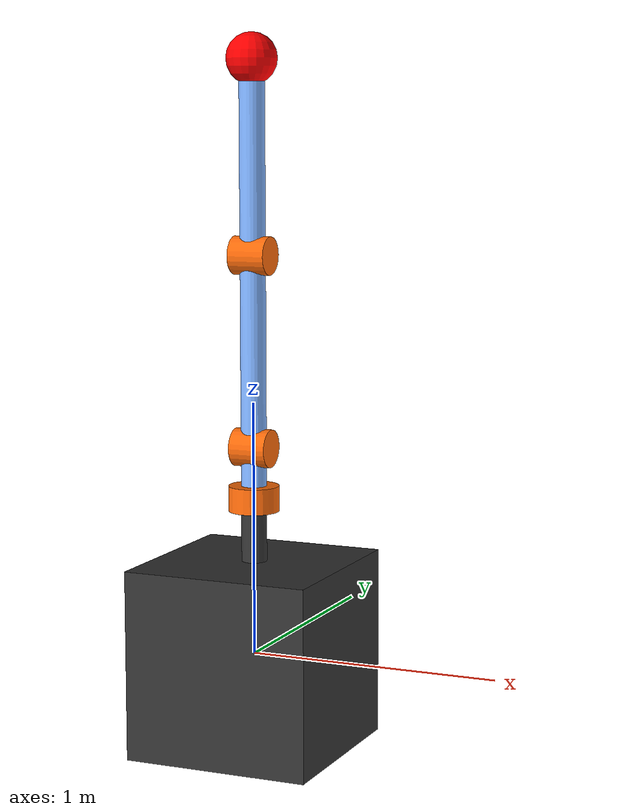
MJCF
<mujoco model="Chaser">
    <compiler angle="radian"/>

    <!-- Zero gravity -->
    <option gravity="0 0 0" />

    <worldbody>
        <!-- Root body with a free joint, making it float in space -->
        <body name="chaser_base" pos="0 0 0">
            <joint name="base_free" type="free"/>
            <inertial pos="0 0 0.1" mass="50" diaginertia="0.05 0.05 0.05"/>

            <!-- Original "base" geometry -->
            <geom size="0.375 0.375 0.375" type="box" contype="0" conaffinity="0"
                  group="1" density="0" rgba="0.2 0.2 0.2 1"/>
            <geom size="0.05 0.125" pos="0 0 0.5" type="cylinder" contype="0" conaffinity="0"
                  group="1" density="0" rgba="0.2 0.2 0.2 1"/>

            <!-- Link_1 -->
            <body name="Link_1" pos="0 0 0.625">
                <inertial pos="0 0 0.1" mass="5" diaginertia="0.05 0.05 0.05"/>
                <joint name="Joint_1" pos="0 0 0" axis="0 0 1"/>
                <geom size="0.05 0.1" pos="0 0 0.1" type="cylinder" contype="0" conaffinity="0"
                      group="1" density="0" rgba="0.5 0.7 1 1"/>
                <geom size="0.1 0.05" type="cylinder" contype="0" conaffinity="0"
                      group="1" density="0" rgba="1 0.423529 0.0392157 1"/>

                <!-- Link_2 -->
                <body name="Link_2" pos="0 0 0.2">
                    <inertial pos="0 0 0.375" mass="10" diaginertia="0.1 0.1 0.1"/>
                    <joint name="Joint_2" pos="0 0 0" axis="1 0 0"/>
                    <geom size="0.05 0.375" pos="0 0 0.375" type="cylinder" contype="0" conaffinity="0"
                          group="1" density="0" rgba="0.5 0.7 1 1"/>
                    <geom size="0.075 0.075" quat="0.707105 0 0.707108 0" type="cylinder" contype="0" conaffinity="0"
                          group="1" density="0" rgba="1 0.423529 0.0392157 1"/>

                    <!-- Link_3 -->
                    <body name="Link_3" pos="0 0 0.75">
                        <inertial pos="0 0 0.375" mass="10" diaginertia="0.1 0.1 0.1"/>
                        <joint name="Joint_3" pos="0 0 0" axis="1 0 0"/>
                        <geom size="0.05 0.375" pos="0 0 0.375" type="cylinder" contype="0" conaffinity="0"
                              group="1" density="0" rgba="0.5 0.7 1 1"/>
                        <geom size="0.075 0.075" quat="0.707105 0 0.707108 0" type="cylinder" contype="0" conaffinity="0"
                              group="1" density="0" rgba="1 0.423529 0.0392157 1"/>
                        <geom size="0.1" pos="0 0 0.75" contype="0" conaffinity="0"
                              group="1" density="0" rgba="1 0 0 1"/>
                    </body>
                </body>
            </body>
        </body>
    </worldbody>

    <!-- Actuators for each joint -->
    <actuator>
        <motor name="Actuator_1" joint="Joint_1" ctrlrange="-1 1"/>
        <motor name="Actuator_2" joint="Joint_2" ctrlrange="-1 1"/>
        <motor name="Actuator_3" joint="Joint_3" ctrlrange="-1 1"/>
    </actuator>
</mujoco>
